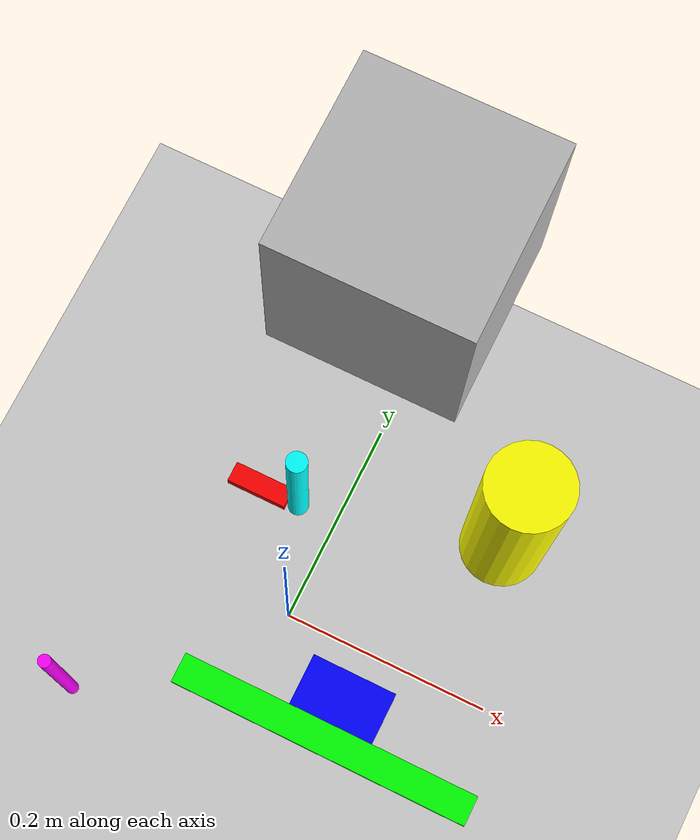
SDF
<sdf version='1.10'>
  <world name='empty'>
    <physics name='1ms' type='ignored'>
      <max_step_size>0.001</max_step_size>
      <real_time_factor>1</real_time_factor>
      <real_time_update_rate>1000</real_time_update_rate>
    </physics>
    <plugin name='gz::sim::systems::Physics' filename='gz-sim-physics-system'/>
    <plugin name='gz::sim::systems::UserCommands' filename='gz-sim-user-commands-system'/>
    <plugin name='gz::sim::systems::SceneBroadcaster' filename='gz-sim-scene-broadcaster-system'/>
    <plugin name='gz::sim::systems::Sensors' filename='gz-sim-sensors-system'>
      <render_engine>ogre2</render_engine>
    </plugin>
    <plugin name='gz::sim::systems::Contact' filename='gz-sim-contact-system'/>
    <plugin name='gz::sim::systems::Label' filename='gz-sim-label-system'/>
    <gravity>0 0 -9.8000000000000007</gravity>
    <magnetic_field>5.5644999999999998e-06 2.2875799999999999e-05 -4.2388400000000002e-05</magnetic_field>
    <atmosphere type='adiabatic'/>
    <scene>
      <ambient>0.400000006 0.400000006 0.400000006 1</ambient>
      <background>0.699999988 0.699999988 0.699999988 1</background>
      <shadows>true</shadows>
    </scene>
    <model name='ground_plane'>
      <static>true</static>
      <link name='link'>
        <collision name='collision'>
          <geometry>
            <plane>
              <normal>0 0 1</normal>
              <size>100 100</size>
            </plane>
          </geometry>
          <surface>
            <friction>
              <ode/>
            </friction>
            <bounce/>
            <contact/>
          </surface>
        </collision>
        <visual name='visual'>
          <geometry>
            <plane>
              <normal>0 0 1</normal>
              <size>100 100</size>
            </plane>
          </geometry>
          <material>
            <ambient>0.800000012 0.800000012 0.800000012 1</ambient>
            <diffuse>0.800000012 0.800000012 0.800000012 1</diffuse>
            <specular>0.800000012 0.800000012 0.800000012 1</specular>
          </material>
        </visual>
        <pose>0 0 0 0 0 0</pose>
        <inertial>
          <pose>0 0 0 0 0 0</pose>
          <mass>1</mass>
          <inertia>
            <ixx>1</ixx>
            <ixy>0</ixy>
            <ixz>0</ixz>
            <iyy>1</iyy>
            <iyz>0</iyz>
            <izz>1</izz>
          </inertia>
        </inertial>
        <enable_wind>false</enable_wind>
      </link>
      <pose>0 0 0 0 0 0</pose>
      <self_collide>false</self_collide>
    </model>
    <model name='usb'>
      <pose>-0.080000000000000002 0.10000000000000001 0.0050000000000000001 0 0 0</pose>
      <link name='box_link'>
        <inertial>
          <inertia>
            <ixx>0.16666</ixx>
            <ixy>0</ixy>
            <ixz>0</ixz>
            <iyy>0.16666</iyy>
            <iyz>0</iyz>
            <izz>0.16666</izz>
          </inertia>
          <mass>1</mass>
          <pose>0 0 0 0 0 0</pose>
        </inertial>
        <collision name='box_collision'>
          <geometry>
            <box>
              <size>0.059999999999999998 0.02 0.01</size>
            </box>
          </geometry>
          <surface>
            <friction>
              <ode/>
            </friction>
            <bounce/>
            <contact/>
          </surface>
        </collision>
        <visual name='box_visual'>
          <geometry>
            <box>
              <size>0.059999999999999998 0.02 0.01</size>
            </box>
          </geometry>
          <material>
            <ambient>1 0 0 1</ambient>
            <diffuse>1 0 0 1</diffuse>
            <specular>1 1 1 1</specular>
          </material>

          <plugin filename="gz-sim-label-system"
                  name="gz::sim::systems::Label">
            <label>1</label>
          </plugin>
        </visual>
        <pose>0 0 0 0 0 0</pose>
        <enable_wind>false</enable_wind>
      </link>
      <static>true</static>
      <self_collide>false</self_collide>
    </model>
    <model name='credit_card'>
      <pose>0.080000000000000002 -0.050000000000000003 0.001 0 0 0</pose>
      <link name='box_link'>
        <inertial>
          <inertia>
            <ixx>0.16666</ixx>
            <ixy>0</ixy>
            <ixz>0</ixz>
            <iyy>0.16666</iyy>
            <iyz>0</iyz>
            <izz>0.16666</izz>
          </inertia>
          <mass>1</mass>
          <pose>0 0 0 0 0 0</pose>
        </inertial>
        <collision name='box_collision'>
          <geometry>
            <box>
              <size>0.085000000000000006 0.053999999999999999 0.002</size>
            </box>
          </geometry>
          <surface>
            <friction>
              <ode/>
            </friction>
            <bounce/>
            <contact/>
          </surface>
        </collision>
        <visual name='box_visual'>
          <geometry>
            <box>
              <size>0.085000000000000006 0.053999999999999999 0.002</size>
            </box>
          </geometry>
          <material>
            <ambient>0 0 1 1</ambient>
            <diffuse>0 0 1 1</diffuse>
            <specular>1 1 1 1</specular>
          </material>

          <plugin filename="gz-sim-label-system"
                  name="gz::sim::systems::Label">
            <label>6</label>
          </plugin>
        </visual>
        <pose>0 0 0 0 0 0</pose>
        <enable_wind>false</enable_wind>
      </link>
      <static>true</static>
      <self_collide>false</self_collide>
    </model>
    <model name='ruler'>
      <pose>0.080000000000000002 -0.089999999999999997 0.0025000000000000001 0 0 0</pose>
      <link name='box_link'>
        <inertial>
          <inertia>
            <ixx>0.16666</ixx>
            <ixy>0</ixy>
            <ixz>0</ixz>
            <iyy>0.16666</iyy>
            <iyz>0</iyz>
            <izz>0.16666</izz>
          </inertia>
          <mass>1</mass>
          <pose>0 0 0 0 0 0</pose>
        </inertial>
        <collision name='box_collision'>
          <geometry>
            <box>
              <size>0.29999999999999999 0.029999999999999999 0.0050000000000000001</size>
            </box>
          </geometry>
          <surface>
            <friction>
              <ode/>
            </friction>
            <bounce/>
            <contact/>
          </surface>
        </collision>
        <visual name='box_visual'>
          <geometry>
            <box>
              <size>0.29999999999999999 0.029999999999999999 0.0050000000000000001</size>
            </box>
          </geometry>
          <material>
            <ambient>0 1 0 1</ambient>
            <diffuse>0 1 0 1</diffuse>
            <specular>1 1 1 1</specular>
          </material>

          <plugin filename="gz-sim-label-system"
                  name="gz::sim::systems::Label">
            <label>4</label>
          </plugin>
        </visual>
        <pose>0 0 0 0 0 0</pose>
        <enable_wind>false</enable_wind>
      </link>
      <static>true</static>
      <self_collide>false</self_collide>
    </model>
    <model name='bottle'>
      <pose>0.14999999999999999 0.14999999999999999 0.10000000000000001 0 0 0</pose>
      <link name='cylinder_link'>
        <inertial>
          <inertia>
            <ixx>0.14580000000000001</ixx>
            <ixy>0</ixy>
            <ixz>0</ixz>
            <iyy>0.14580000000000001</iyy>
            <iyz>0</iyz>
            <izz>0.125</izz>
          </inertia>
          <mass>1</mass>
          <pose>0 0 0 0 0 0</pose>
        </inertial>
        <collision name='cylinder_collision'>
          <geometry>
            <cylinder>
              <radius>0.040000000000000001</radius>
              <length>0.20000000000000001</length>
            </cylinder>
          </geometry>
          <surface>
            <friction>
              <ode/>
            </friction>
            <bounce/>
            <contact/>
          </surface>
        </collision>
        <visual name='cylinder_visual'>
          <geometry>
            <cylinder>
              <radius>0.040000000000000001</radius>
              <length>0.20000000000000001</length>
            </cylinder>
          </geometry>
          <material>
            <ambient>1 1 0 1</ambient>
            <diffuse>1 1 0 1</diffuse>
            <specular>1 1 1 1</specular>
          </material>

          <plugin filename="gz-sim-label-system"
                  name="gz::sim::systems::Label">
            <label>2</label>
          </plugin>
        </visual>
        <pose>0 0 0 0 0 0</pose>
        <enable_wind>false</enable_wind>
      </link>
      <static>true</static>
      <self_collide>false</self_collide>
    </model>
    <model name='pen'>
      <pose>-0.14999999999999999 -0.14999999999999999 0.074999999999999997 0 0 0</pose>
      <link name='cylinder_link'>
        <inertial>
          <inertia>
            <ixx>0.14580000000000001</ixx>
            <ixy>0</ixy>
            <ixz>0</ixz>
            <iyy>0.14580000000000001</iyy>
            <iyz>0</iyz>
            <izz>0.125</izz>
          </inertia>
          <mass>1</mass>
          <pose>0 0 0 0 0 0</pose>
        </inertial>
        <collision name='cylinder_collision'>
          <geometry>
            <cylinder>
              <radius>0.0060000000000000001</radius>
              <length>0.14999999999999999</length>
            </cylinder>
          </geometry>
          <surface>
            <friction>
              <ode/>
            </friction>
            <bounce/>
            <contact/>
          </surface>
        </collision>
        <visual name='cylinder_visual'>
          <geometry>
            <cylinder>
              <radius>0.0060000000000000001</radius>
              <length>0.14999999999999999</length>
            </cylinder>
          </geometry>
          <material>
            <ambient>1 0 1 1</ambient>
            <diffuse>1 0 1 1</diffuse>
            <specular>1 1 1 1</specular>
          </material>

          <plugin filename="gz-sim-label-system"
                  name="gz::sim::systems::Label">
            <label>3</label>
          </plugin>
        </visual>
        <pose>0 0 0 0 0 0</pose>
        <enable_wind>false</enable_wind>
      </link>
      <static>true</static>
      <self_collide>false</self_collide>
    </model>
    <model name='marker'>
      <pose>-0.040000000000000001 0.10000000000000001 0.070000000000000007 0 0 0</pose>
      <link name='cylinder_link'>
        <inertial>
          <inertia>
            <ixx>0.14580000000000001</ixx>
            <ixy>0</ixy>
            <ixz>0</ixz>
            <iyy>0.14580000000000001</iyy>
            <iyz>0</iyz>
            <izz>0.125</izz>
          </inertia>
          <mass>1</mass>
          <pose>0 0 0 0 0 0</pose>
        </inertial>
        <collision name='cylinder_collision'>
          <geometry>
            <cylinder>
              <radius>0.01</radius>
              <length>0.14000000000000001</length>
            </cylinder>
          </geometry>
          <surface>
            <friction>
              <ode/>
            </friction>
            <bounce/>
            <contact/>
          </surface>
        </collision>
        <visual name='cylinder_visual'>
          <geometry>
            <cylinder>
              <radius>0.01</radius>
              <length>0.14000000000000001</length>
            </cylinder>
          </geometry>
          <material>
            <ambient>0 1 1 1</ambient>
            <diffuse>0 1 1 1</diffuse>
            <specular>1 1 1 1</specular>
          </material>

          <plugin filename="gz-sim-label-system"
                  name="gz::sim::systems::Label">
            <label>5</label>
          </plugin>
        </visual>
        <pose>0 0 0 0 0 0</pose>
        <enable_wind>false</enable_wind>
      </link>
      <static>true</static>
      <self_collide>false</self_collide>
    </model>
    <model name='depth_camera'>
      <pose>6.2450045135165055e-17 0 0.80000000000000027 5.4765707605047212e-64 1.5700000000008241 5.4733804676068868e-64</pose>
      <link name='link'>
        <pose>0.050000000000000003 0.050000000000000003 0.050000000000000003 0 0 0</pose>
        <inertial>
          <mass>0.10000000000000001</mass>
          <inertia>
            <ixx>0.00016666700000000001</ixx>
            <iyy>0.00016666700000000001</iyy>
            <izz>0.00016666700000000001</izz>
            <ixy>0</ixy>
            <ixz>0</ixz>
            <iyz>0</iyz>
          </inertia>
          <pose>0 0 0 0 0 0</pose>
        </inertial>
        <collision name='collision'>
          <geometry>
            <box>
              <size>0.10000000000000001 0.10000000000000001 0.10000000000000001</size>
            </box>
          </geometry>
          <surface>
            <friction>
              <ode/>
            </friction>
            <bounce/>
            <contact/>
          </surface>
        </collision>
        <visual name='visual'>
          <geometry>
            <box>
              <size>0.10000000000000001 0.10000000000000001 0.10000000000000001</size>
            </box>
          </geometry>
        </visual>
        <sensor name='depth_camera1' type='depth_camera'>
          <pose>0 0 0 0 0 0</pose>
          <topic>depth_camera</topic>
          <update_rate>10</update_rate>
          <enable_metrics>false</enable_metrics>
          <camera name='__default__'>
            <pose>0 0 0 0 0 0</pose>
            <horizontal_fov>1.05</horizontal_fov>
            <image>
              <width>256</width>
              <height>256</height>
              <format>R_FLOAT32</format>
              <anti_aliasing>4</anti_aliasing>
            </image>
            <camera_info_topic>__default__</camera_info_topic>
            <trigger_topic></trigger_topic>
            <triggered>false</triggered>
            <clip>
              <near>0.10000000000000001</near>
              <far>2</far>
            </clip>
            <save enabled='false'>
              <path>__default__</path>
            </save>
            <visibility_mask>4294967295</visibility_mask>
            <noise>
              <type>none</type>
              <mean>0</mean>
              <stddev>0</stddev>
            </noise>
            <distortion>
              <k1>0</k1>
              <k2>0</k2>
              <k3>0</k3>
              <p1>0</p1>
              <p2>0</p2>
              <center>0.5 0.5</center>
            </distortion>
            <lens>
              <type>stereographic</type>
              <scale_to_hfov>true</scale_to_hfov>
              <cutoff_angle>1.5707963267948966</cutoff_angle>
              <env_texture_size>256</env_texture_size>
            </lens>
            <optical_frame_id></optical_frame_id>
          </camera>
        </sensor>
        <sensor name='rgb_camera' type='camera'>
          <pose>0 0 0 0 0 0</pose>
          <topic>rgb_camera</topic>
          <update_rate>10</update_rate>
          <enable_metrics>false</enable_metrics>
          <camera name='__default__'>
            <pose>0 0 0 0 0 0</pose>
            <horizontal_fov>1.05</horizontal_fov>
            <image>
              <width>640</width>
              <height>480</height>
              <format>RGB_INT8</format>
              <anti_aliasing>4</anti_aliasing>
            </image>
            <camera_info_topic>__default__</camera_info_topic>
            <trigger_topic></trigger_topic>
            <triggered>false</triggered>
            <clip>
              <near>0.10000000000000001</near>
              <far>2</far>
            </clip>
            <save enabled='false'>
              <path>__default__</path>
            </save>
            <visibility_mask>4294967295</visibility_mask>
            <noise>
              <type>none</type>
              <mean>0</mean>
              <stddev>0</stddev>
            </noise>
            <distortion>
              <k1>0</k1>
              <k2>0</k2>
              <k3>0</k3>
              <p1>0</p1>
              <p2>0</p2>
              <center>0.5 0.5</center>
            </distortion>
            <lens>
              <type>stereographic</type>
              <scale_to_hfov>true</scale_to_hfov>
              <cutoff_angle>1.5707963267948966</cutoff_angle>
              <env_texture_size>256</env_texture_size>
            </lens>
            <optical_frame_id></optical_frame_id>
          </camera>
        </sensor>

        <sensor name="instance_segmentation_camera" type="segmentation">
          <topic>panoptic</topic>
          <camera>
            <segmentation_type>semantic</segmentation_type>
            <horizontal_fov>1.05</horizontal_fov>
            <image><width>256</width><height>256</height></image>
            <clip><near>0.1</near><far>2.0</far></clip>
          </camera>
          <always_on>1</always_on>
          <update_rate>10</update_rate>
        </sensor>
        <enable_wind>false</enable_wind>
      </link>
      <static>true</static>
      <self_collide>false</self_collide>
    </model>
    <light name='sun' type='directional'>
      <pose>0 0 10 0 0 0</pose>
      <cast_shadows>true</cast_shadows>
      <intensity>1</intensity>
      <direction>-0.5 0.10000000000000001 -0.90000000000000002</direction>
      <diffuse>0.800000012 0.800000012 0.800000012 1</diffuse>
      <specular>0.200000003 0.200000003 0.200000003 1</specular>
      <attenuation>
        <range>1000</range>
        <linear>0.0099999997764825821</linear>
        <constant>0.89999997615814209</constant>
        <quadratic>0.0010000000474974513</quadratic>
      </attenuation>
      <spot>
        <inner_angle>0</inner_angle>
        <outer_angle>0</outer_angle>
        <falloff>0</falloff>
      </spot>
    </light>
  </world>
</sdf>
